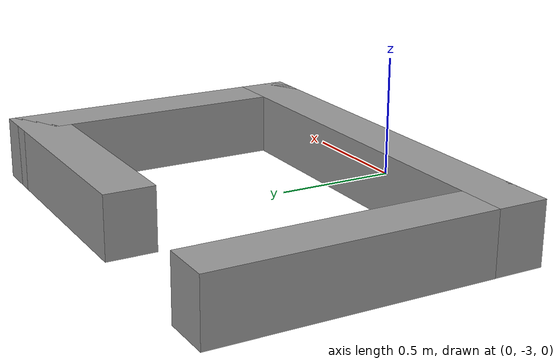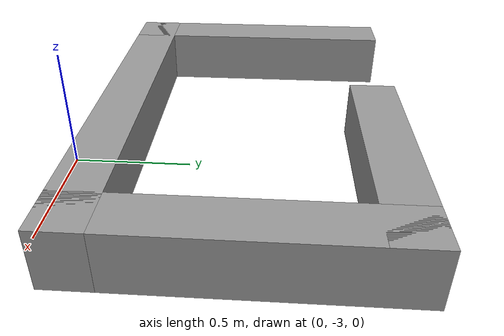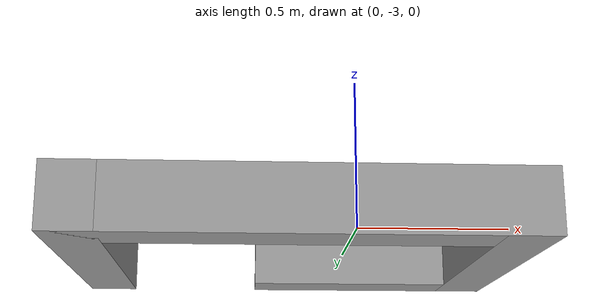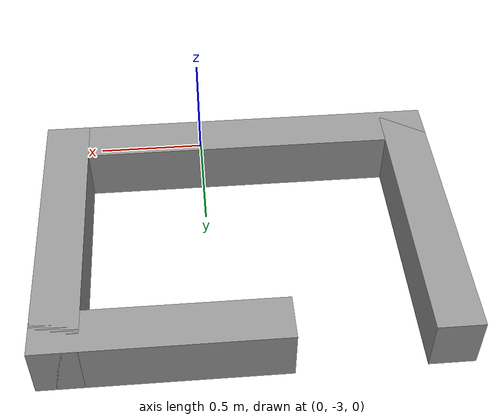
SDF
<?xml version='1.0'?>
<sdf version='1.6'>
  <model name='Test1'>
    <pose frame=''>-0.17 -2.25 0 0 -0 0</pose>
    <link name='Wall_0'>
      <collision name='Wall_0_Collision'>
        <geometry>
          <box>
            <size>1.05 0.2 0.25</size>
          </box>
        </geometry>
        <pose frame=''>0 0 0.125 0 -0 0</pose>
      </collision>
      <visual name='Wall_0_Visual'>
        <pose frame=''>0 0 0.125 0 -0 0</pose>
        <geometry>
          <box>
            <size>1.05 0.2 0.25</size>
          </box>
        </geometry>
        <material>
          <script>
            <uri>file://media/materials/scripts/gazebo.material</uri>
            <name>Gazebo/Grey</name>
          </script>
          <ambient>1 1 1 1</ambient>
        </material>
        <meta>
          <layer>0</layer>
        </meta>
      </visual>
      <pose frame=''>0.375 0.55 0 0 -0 0</pose>
    </link>
    <link name='Wall_1'>
      <collision name='Wall_1_Collision'>
        <geometry>
          <box>
            <size>1.3 0.2 0.25</size>
          </box>
        </geometry>
        <pose frame=''>0 0 0.125 0 -0 0</pose>
      </collision>
      <visual name='Wall_1_Visual'>
        <pose frame=''>0 0 0.125 0 -0 0</pose>
        <geometry>
          <box>
            <size>1.3 0.2 0.25</size>
          </box>
        </geometry>
        <material>
          <script>
            <uri>file://media/materials/scripts/gazebo.material</uri>
            <name>Gazebo/Grey</name>
          </script>
          <ambient>1 1 1 1</ambient>
        </material>
        <meta>
          <layer>0</layer>
        </meta>
      </visual>
      <pose frame=''>0.8 0 0 0 -0 -1.5708</pose>
    </link>
    <link name='Wall_2'>
      <collision name='Wall_2_Collision'>
        <geometry>
          <box>
            <size>1.8 0.2 0.25</size>
          </box>
        </geometry>
        <pose frame=''>0 0 0.125 0 -0 0</pose>
      </collision>
      <visual name='Wall_2_Visual'>
        <pose frame=''>0 0 0.125 0 -0 0</pose>
        <geometry>
          <box>
            <size>1.8 0.2 0.25</size>
          </box>
        </geometry>
        <material>
          <script>
            <uri>file://media/materials/scripts/gazebo.material</uri>
            <name>Gazebo/Grey</name>
          </script>
          <ambient>1 1 1 1</ambient>
        </material>
        <meta>
          <layer>0</layer>
        </meta>
      </visual>
      <pose frame=''>0 -0.55 0 0 -0 3.14159</pose>
    </link>
    <link name='Wall_3'>
      <collision name='Wall_3_Collision'>
        <geometry>
          <box>
            <size>1.3 0.2 0.25</size>
          </box>
        </geometry>
        <pose frame=''>0 0 0.125 0 -0 0</pose>
      </collision>
      <visual name='Wall_3_Visual'>
        <pose frame=''>0 0 0.125 0 -0 0</pose>
        <geometry>
          <box>
            <size>1.3 0.2 0.25</size>
          </box>
        </geometry>
        <material>
          <script>
            <uri>file://media/materials/scripts/gazebo.material</uri>
            <name>Gazebo/Grey</name>
          </script>
          <ambient>1 1 1 1</ambient>
        </material>
        <meta>
          <layer>0</layer>
        </meta>
      </visual>
      <pose frame=''>-0.8 0 0 0 -0 1.5708</pose>
    </link>
    <static>1</static>
  </model>
</sdf>
